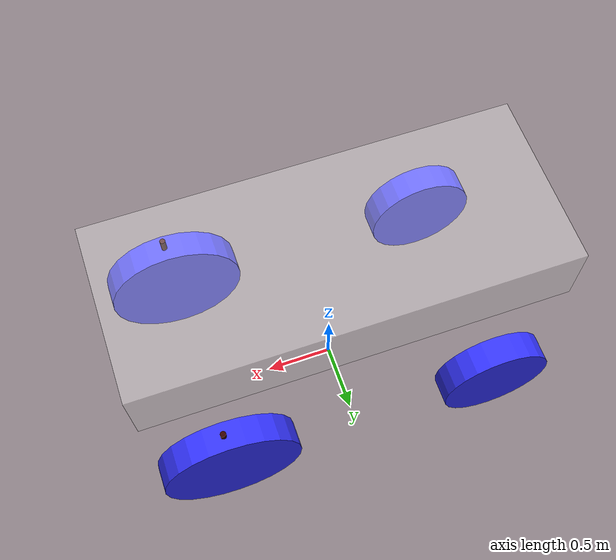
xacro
<?xml version="1.0"?>
<robot xmlns:xacro="http://www.ros.org/wiki/xacro" >

    <xacro:property name="shock_height" value="1"/>
    <xacro:property name="shock_travel" value="0.5"/>
    <xacro:property name="wheel_base_length" value="2"/>
    <xacro:property name="wheel_base_width" value="2"/>

    <!-- Include Inertial File -->
    <xacro:include filename="inertial_macros.xacro"/>
    <xacro:include filename="robot_colors.xacro"/>

    <!-- Base Link -->
    <link name="base_link">

    </link>

    <!-- Chassis Link -->
    <joint name="chasis_joint" type="fixed">
        <parent link="base_link"/>
        <child link="chassis"/>
        <origin xyz="-1.5 0 1"/>
    </joint>
    <link name="chassis">
        <visual>
            <origin xyz="1.5 0 0.5"/>
            <geometry>
                <box size="3 1.25 0.5"/>
            </geometry>
            <material name="white"/>
        </visual>
        <collision>
            <origin xyz="1.5 0 0.5"/>
            <geometry>
                <box size="3 2 0.5"/>
            </geometry>
            <material name="white"/>
        </collision>
        <xacro:inertial_box mass="5" x="3" y="2" z="0.5">
            <origin xyz="1.5 0 0.5" rpy="0 0 0"/>
        </xacro:inertial_box>
    </link>

    <!-- Left Wheel Rear -->
    <joint name="left_wheel_rear_joint" type="continuous">
        <parent link="base_link"/>
        <child link="left_wheel_rear"/>
        <origin xyz="-1 0.75 0.5" rpy="-${pi/2} 0 0"/>
        <axis xyz="0 0 1"/>
    </joint>
    <link name="left_wheel_rear">
        <visual>
            <geometry>
                <cylinder length="0.2" radius="0.4" />/>
            </geometry>
            <material name="blue"/>
        </visual>
        <collision>
            <geometry>
                <cylinder length="0.2" radius="0.4" />/>
            </geometry>
            <material name="blue"/>
        </collision>
        <xacro:inertial_cylinder mass="0.1" length="0.2" radius="0.4">
            <origin xyz="0 0 0" rpy="0 0 0"/>
        </xacro:inertial_cylinder>
    </link>

    <!-- Right Wheel Rear -->
    <joint name="right_wheel_rear_joint" type="continuous">
        <parent link="base_link"/>
        <child link="right_wheel_rear"/>
        <origin xyz="-1 -0.75 0.5" rpy="${pi/2} 0 0"/>
        <axis xyz="0 0 -1"/>
    </joint>
    <link name="right_wheel_rear">
        <visual>
            <geometry>
                <cylinder length="0.2" radius="0.4" />/>
            </geometry>
            <material name="blue"/>
        </visual>
        <collision>
            <geometry>
                <cylinder length="0.2" radius="0.4" />/>
            </geometry>
            <material name="blue"/>
        </collision>
        <xacro:inertial_cylinder mass="0.1" length="0.2" radius="0.4">
            <origin xyz="0 0 0" rpy="0 0 0"/>
        </xacro:inertial_cylinder>
    </link>

    <!-- Right Shock Front -->

    <!-- Right Wheel Front Steer -->
    <joint name="right_wheel_front_steer_joint" type="revolute">
        <limit lower="-1" upper="1" effort="1" velocity="5"/>
        <parent link="base_link"/>
        <child link="right_wheel_front_steer"/>
        <origin xyz="1 -0.75 1"/>
        <axis xyz="0 0 -1"/>
    </joint>
    <link name="right_wheel_front_steer">
        <visual>
            <geometry>
                <cylinder length="0.2" radius="0.02" />/>
            </geometry>
            <material name="grey"/>
        </visual>
        <collision>
            <geometry>
                <cylinder length="0.2" radius="0.02" />/>
            </geometry>
            <material name="grey"/>
        </collision>
        <xacro:inertial_cylinder mass="0.00001" length="0.2" radius="0.02">
            <origin xyz="0 0 0" rpy="0 0 0"/>
        </xacro:inertial_cylinder>
    </link>
    <!-- Right Wheel Front -->
    <joint name="right_wheel_front_joint" type="continuous">
        <parent link="right_wheel_front_steer"/>
        <child link="right_wheel_front"/>
        <origin xyz="0 0 -0.5" rpy="${pi/2} 0 0"/>
        <axis xyz="0 0 -1"/>
    </joint>
    <link name="right_wheel_front">
        <visual>
            <geometry>
                <cylinder length="0.2" radius="0.5" />/>
            </geometry>
            <material name="blue"/>
        </visual>
        <collision>
            <geometry>
                <cylinder length="0.2" radius="0.5" />/>
            </geometry>
            <material name="blue"/>
        </collision>
        <xacro:inertial_cylinder mass="0.1" length="0.2" radius="0.5">
            <origin xyz="0 0 0" rpy="0 0 0"/>
        </xacro:inertial_cylinder>
    </link>

    <!-- Left Wheel Front Steer -->
    <joint name="left_wheel_front_steer_joint" type="revolute">
        <limit lower="-1" upper="1" effort="100" velocity="5"/>
        <parent link="base_link"/>
        <child link="left_wheel_front_steer"/>
        <origin xyz="1 0.75 1"/>
        <axis xyz="0 0 -1"/>
    </joint>
    <link name="left_wheel_front_steer">
        <visual>
            <geometry>
                <cylinder length="0.1" radius="0.02" />/>
            </geometry>
            <material name="grey"/>
        </visual>
        <collision>
            <geometry>
                <cylinder length="0.1" radius="0.02" />/>
            </geometry>
            <material name="grey"/>
        </collision>
        <xacro:inertial_cylinder mass="0.0001" length="0.1" radius="0.02">
            <origin xyz="0 0 0" rpy="0 0 0"/>
        </xacro:inertial_cylinder>
    </link>
   <!-- Left Wheel Front -->
    <joint name="left_wheel_front_joint" type="continuous">
        <parent link="left_wheel_front_steer"/>
        <child link="left_wheel_front"/>
        <origin xyz="0 0 -0.5" rpy="${pi/2} 0 0"/>
        <axis xyz="0 0 -1"/>
    </joint>
    <link name="left_wheel_front">
        <visual>
            <geometry>
                <cylinder length="0.2" radius="0.5" />/>
            </geometry>
            <material name="blue"/>
        </visual>
        <collision>
            <geometry>
                <cylinder length="0.2" radius="0.5" />/>
            </geometry>
            <material name="blue"/>
        </collision>
        <xacro:inertial_cylinder mass="0.1" length="0.2" radius="0.5">
            <origin xyz="0 0 0" rpy="0 0 0"/>
        </xacro:inertial_cylinder>
    </link>

</robot>

    <xacro:arg name="wheel_diameter" default="1"/>
    <xacro:property name="wheel_radius" value="${$(arg wheel_diameter)/2}"/>
    <xacro:property name="wheel_width" value="0.2"/>
    <xacro:property name="wheel_friction" value="0.8"/>
    <xacro:property name="wheelbase_length" value="2"/>
    <xacro:property name="front_wheelbase_width" value="2"/>
    <xacro:property name="rear_wheelbase_width" value="2"/>
    <xacro:property name="wheel_mass" value="3"/>
    <xacro:property name="total_mass" value = "30.0"/>
    <xacro:property name="shock_travel" value = "0.0"/>
    <xacro:property name="chassis_height" value = "1"/>
    <xacro:property name="chassis_elevation" value = "-0.01"/>
    <xacro:property name="chassis_length" value = "3"/>
    <xacro:property name="chassis_width" value = "1.5"/>
    <xacro:property name="chassis_thickness" value = "0.25"/>
    <xacro:property name="chassis_mass" value = "${total_mass-4*wheel_mass}"/>

    <!-- Include Inertial File -->
    <xacro:include filename="inertial_macros.xacro"/>
    <xacro:include filename="robot_colors.xacro"/>

    <!-- Base Link -->
    <link name="base_link">
    </link>

  <!-- Chassis Link -->
    <joint name="chasis_joint" type="fixed">
        <parent link="base_link"/>
        <child link="chassis_link"/>
        <origin xyz="0 0 ${chassis_height}"/>
    </joint>
    <link name="chassis_link">
        <visual>
            <geometry>
                <box size="${chassis_length} ${chassis_width} ${chassis_thickness}"/>
            </geometry>
            <material name="white"/>
        </visual>
        <collision>
            <origin xyz="0 0 0"/>
            <geometry>
                <box size="${chassis_length} ${chassis_width} ${chassis_thickness}"/>
            </geometry>
            <material name="white"/>
        </collision>
        <xacro:inertial_box mass="${chassis_mass}" x="${chassis_length}" y="${chassis_width}" z="${chassis_thickness}">
            <origin xyz="0 0 0" rpy="0 0 0"/>
        </xacro:inertial_box>
    </link>

    <!-- Left Wheel Rear -->
    <joint name="left_shock_rear_joint" type="prismatic">
        <limit lower="0" upper="${shock_travel}" effort="100" velocity="100"/>
        <axis xyz="0 0 1"/>
        <parent link="base_link"/>
        <child link="left_shock_rear_link"/>
        <origin rpy="0 0 0" xyz="${-wheelbase_length/2} ${rear_wheelbase_width/2} ${wheel_radius}"/>
    </joint>
    <link name="left_shock_rear_link">
        <visual>
            <origin xyz="0 0 ${wheel_radius*1.2}" rpy="0 0 0"/>
            <geometry>
                <cylinder length="0.1" radius="0.05"/>
            </geometry>
            <material name="black"/>
        </visual>
        <collision>
            <origin xyz="0 0 ${wheel_radius*1.2}" rpy="0 0 0"/>
            <geometry>
                <cylinder length="0.1" radius="0.05"/>
            </geometry>
            <material name="black"/>
        </collision>
        <xacro:inertial_cylinder mass="0.01" length="0.1" radius="0.05">
            <origin xyz="0 0 ${wheel_radius*1.2}" rpy="0 0 0"/>
        </xacro:inertial_cylinder>
    </link>

    <joint name="left_wheel_rear_joint" type="continuous">
        <parent link="left_shock_rear_link"/>
        <child link="left_wheel_rear_link"/>
        <origin xyz="0 0 0" rpy="-${pi/2} 0 0"/>
        <axis xyz="0 0 1"/>
    </joint>
    <link name="left_wheel_rear_link">
        <visual>
            <geometry>
                <cylinder length="${wheel_width}" radius="${wheel_radius}" />/>
            </geometry>
            <material name="blue"/>
        </visual>
        <collision>
            <geometry>
                <cylinder length="${wheel_width}" radius="${wheel_radius}" />/>
            </geometry>
            <material name="blue"/>
        </collision>
        <xacro:inertial_cylinder mass="${wheel_mass}" length="${wheel_width}" radius="${wheel_radius}">
            <origin xyz="0 0 0" rpy="0 0 0"/>
        </xacro:inertial_cylinder>
    </link>

    <!-- Right Wheel Rear -->
    <joint name="right_shock_rear_joint" type="prismatic">
        <limit lower="0" upper="${shock_travel}" effort="100" velocity="100"/>
        <axis xyz="0 0 1"/>
        <parent link="base_link"/>
        <child link="right_shock_rear_link"/>
        <origin rpy="0 0 0" xyz="${-wheelbase_length/2} ${-rear_wheelbase_width/2} ${wheel_radius}"/>
    </joint>
    <link name="right_shock_rear_link">
        <visual>
            <origin xyz="0 0 ${wheel_radius*1.2}" rpy="0 0 0"/>
            <geometry>
                <cylinder length="0.1" radius="0.05"/>
            </geometry>
            <material name="black"/>
        </visual>
        <collision>
            <origin xyz="0 0 ${wheel_radius*1.2}" rpy="0 0 0"/>
            <geometry>
                <cylinder length="0.1" radius="0.05"/>
            </geometry>
            <material name="black"/>
        </collision>
        <xacro:inertial_cylinder mass="0.01" length="0.1" radius="0.05">
            <origin xyz="0 0 ${wheel_radius*1.2}" rpy="0 0 0"/>
        </xacro:inertial_cylinder>
    </link>

    <joint name="right_wheel_rear_joint" type="continuous">
        <parent link="right_shock_rear_link"/>
        <child link="right_wheel_rear_link"/>
        <origin xyz="0 0 0" rpy="-${pi/2} 0 0"/>
        <axis xyz="0 0 1"/>
    </joint>
    <link name="right_wheel_rear_link">
        <visual>
            <geometry>
                <cylinder length="${wheel_width}" radius="${wheel_radius}" />/>
            </geometry>
            <material name="blue"/>
        </visual>
        <collision>
            <geometry>
                <cylinder length="${wheel_width}" radius="${wheel_radius}" />/>
            </geometry>
            <material name="blue"/>
        </collision>
        <xacro:inertial_cylinder mass="${wheel_mass}" length="${wheel_width}" radius="${wheel_radius}">
            <origin xyz="0 0 0" rpy="0 0 0"/>
        </xacro:inertial_cylinder>
    </link>

    <!-- Left Wheel front -->
    <joint name="left_shock_front_joint" type="prismatic">
        <limit lower="0" upper="${shock_travel}" effort="100" velocity="100"/>
        <axis xyz="0 0 1"/>
        <parent link="base_link"/>
        <child link="left_shock_front_link"/>
        <origin rpy="0 0 0" xyz="${wheelbase_length/2} ${front_wheelbase_width/2} ${wheel_radius}"/>
    </joint>
    <link name="left_shock_front_link">
        <visual>
            <origin xyz="0 0 ${wheel_radius*1.2}" rpy="0 0 0"/>
            <geometry>
                <cylinder length="0.1" radius="0.05"/>
            </geometry>
            <material name="black"/>
        </visual>
        <collision>
            <origin xyz="0 0 ${wheel_radius*1.2}" rpy="0 0 0"/>
            <geometry>
                <cylinder length="0.1" radius="0.05"/>
            </geometry>
            <material name="black"/>
        </collision>
        <xacro:inertial_cylinder mass="0.01" length="0.1" radius="0.05">
            <origin xyz="0 0 ${wheel_radius*1.2}" rpy="0 0 0"/>
        </xacro:inertial_cylinder>
    </link>

    <joint name="left_wheel_front_joint" type="continuous">
        <parent link="left_shock_front_link"/>
        <child link="left_wheel_front_link"/>
        <origin xyz="0 0 0" rpy="-${pi/2} 0 0"/>
        <axis xyz="0 0 1"/>
    </joint>
    <link name="left_wheel_front_link">
        <visual>
            <geometry>
                <cylinder length="${wheel_width}" radius="${wheel_radius}" />/>
            </geometry>
            <material name="blue"/>
        </visual>
        <collision>
            <geometry>
                <cylinder length="${wheel_width}" radius="${wheel_radius}" />/>
            </geometry>
            <material name="blue"/>
        </collision>
        <xacro:inertial_cylinder mass="${wheel_mass}" length="${wheel_width}" radius="${wheel_radius}">
            <origin xyz="0 0 0" rpy="0 0 0"/>
        </xacro:inertial_cylinder>
    </link>

    <!-- Right Wheel front -->
    <joint name="right_shock_front_joint" type="prismatic">
        <limit lower="0" upper="${shock_travel}" effort="100" velocity="100"/>
        <axis xyz="0 0 1"/>
        <parent link="base_link"/>
        <child link="right_shock_front_link"/>
        <origin rpy="0 0 0" xyz="${wheelbase_length/2} ${-front_wheelbase_width/2} ${wheel_radius}"/>
    </joint>
    <link name="right_shock_front_link">
        <visual>
            <origin xyz="0 0 ${wheel_radius*1.2}" rpy="0 0 0"/>
            <geometry>
                <cylinder length="0.1" radius="0.05"/>
            </geometry>
            <material name="black"/>
        </visual>
        <collision>
            <origin xyz="0 0 ${wheel_radius*1.2}" rpy="0 0 0"/>
            <geometry>
                <cylinder length="0.1" radius="0.05"/>
            </geometry>
            <material name="black"/>
        </collision>
        <xacro:inertial_cylinder mass="0.01" length="0.1" radius="0.05">
            <origin xyz="0 0 ${wheel_radius*1.2}" rpy="0 0 0"/>
        </xacro:inertial_cylinder>
    </link>

    <joint name="right_wheel_front_joint" type="continuous">
        <parent link="right_shock_front_link"/>
        <child link="right_wheel_front_link"/>
        <origin xyz="0 0 0" rpy="-${pi/2} 0 0"/>
        <axis xyz="0 0 1"/>
    </joint>
    <link name="right_wheel_front_link">
        <visual>
            <geometry>
                <cylinder length="${wheel_width}" radius="${wheel_radius}" />/>
            </geometry>
            <material name="blue"/>
        </visual>
        <collision>
            <geometry>
                <cylinder length="${wheel_width}" radius="${wheel_radius}" />/>
            </geometry>
            <material name="blue"/>
        </collision>
        <xacro:inertial_cylinder mass="${wheel_mass}" length="${wheel_width}" radius="${wheel_radius}">
            <origin xyz="0 0 0" rpy="0 0 0"/>
        </xacro:inertial_cylinder>
    </link>

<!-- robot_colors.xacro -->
<robot xmlns:xacro="http://www.ros.org/wiki/xacro"  name="robot">

    <!-- Colors -->

    <material name="white">
        <color rgba="1 1 1 0.3"/>
    </material>

    <material name="orange">
        <color rgba="1 0.3 0.1 1"/>
    </material>

    <material name="blue">
        <color rgba="0.2 0.2 1 0.9"/>
    </material>

    <material name="black">
        <color rgba="0 0 0 1"/>
    </material>

    <material name="grey">
        <color rgba="0.2 0 0 1"/>
    </material>

</robot>
